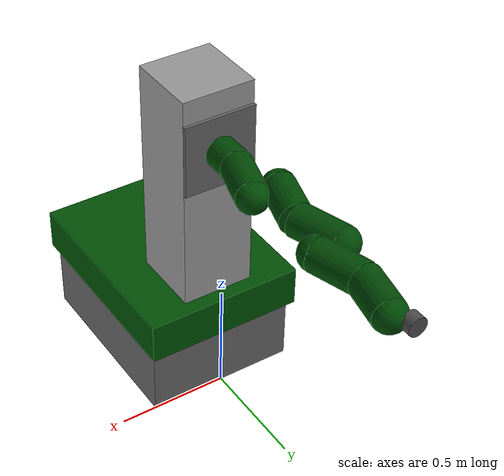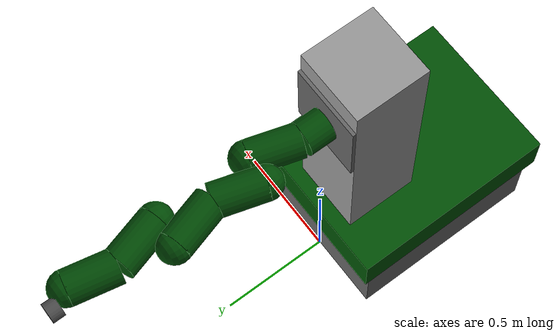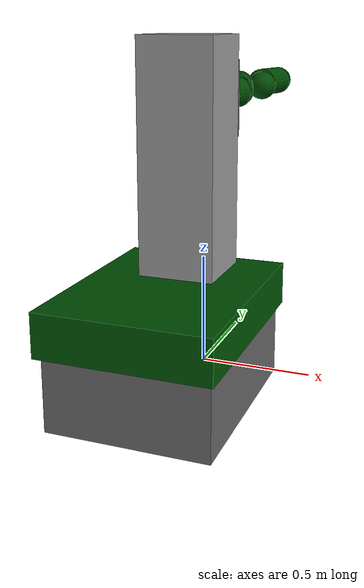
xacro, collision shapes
<?xml version="1.0"?>
<robot xmlns:xacro="http://www.ros.org/wiki/xacro" name="ics_lwr_enviroment">

    <!-- Include all models -->
    <xacro:include filename="$(find lwr_description)/model/kuka_lwr.urdf.xacro"/>

    <!-- CONSTANTS -->
    <xacro:property name="PI" value="3.14159265359" />

    <material name="Grey1">
        <color rgba="0.4 0.4 0.4 1.0"/>
    </material>

    <material name="Grey2">
        <color rgba="0.6 0.6 0.6 1.0"/>
    </material>

    <material name="DarkGreen1">
        <color rgba="0.0 0.32 0.02 1.0"/>
    </material>

    <!-- world -->
    <link name="world"/>

    <!-- platform_lower -->
    <xacro:property name="platform_lower_size_x" value="0.680" />
    <xacro:property name="platform_lower_size_y" value="0.865" />
    <xacro:property name="platform_lower_size_z" value="0.315" />
    <xacro:property name="platform_lower_origin_x" value="${platform_lower_size_x/2}" />
    <xacro:property name="platform_lower_origin_y" value="${platform_lower_size_y/2}" />
    <xacro:property name="platform_lower_origin_z" value="${platform_lower_size_z/2}" />

    <link name="platform_lower">
        <inertial>
            <mass value="10.0"/>
            <origin rpy="0 0 0" xyz="0 0 0"/>
            <inertia ixx="0.01" iyy="0.01" izz="0.01" ixy="0" iyz="0" ixz="0"/>
        </inertial>
        <visual>
            <origin xyz="${platform_lower_origin_x} ${platform_lower_origin_y} ${platform_lower_origin_z}" rpy="0 0 0"/>
            <geometry>
                <box size="${platform_lower_size_x} ${platform_lower_size_y} ${platform_lower_size_z}"/>
            </geometry>
            <material name="Grey1"> </material>
        </visual>
        <collision>
            <origin xyz="${platform_lower_origin_x} ${platform_lower_origin_y} ${platform_lower_origin_z}" rpy="0 0 0"/>
            <geometry>
                <box size="${platform_lower_size_x} ${platform_lower_size_y} ${platform_lower_size_z}"/>
            </geometry>
        </collision>
    </link>

    <!-- fix platform_lower to world -->
    <joint name="platform_lower_to_world" type="fixed">
        <origin xyz="0.340 0.000 0.000" rpy="0.000 0.000 ${PI}"/>
        <parent link="world"/>
        <child link="platform_lower"/>
    </joint>

    <!-- platform_upper -->
    <xacro:property name="platform_upper_size_x" value="0.720" />
    <xacro:property name="platform_upper_size_y" value="0.935" />
    <xacro:property name="platform_upper_size_z" value="0.185" />
    <xacro:property name="platform_upper_origin_x" value="${platform_upper_size_x/2}" />
    <xacro:property name="platform_upper_origin_y" value="${platform_upper_size_y/2}" />
    <xacro:property name="platform_upper_origin_z" value="${platform_upper_size_z/2}" />

    <link name="platform_upper">
        <inertial>
            <mass value="10.0"/>
            <origin rpy="0 0 0" xyz="0 0 0"/>
            <inertia ixx="0.01" iyy="0.01" izz="0.01" ixy="0" iyz="0" ixz="0"/>
        </inertial>
        <visual>
            <origin xyz="${platform_upper_origin_x} ${platform_upper_origin_y} ${platform_upper_origin_z}" rpy="0 0 0"/>
            <geometry>
                <box size="${platform_upper_size_x} ${platform_upper_size_y} ${platform_upper_size_z}"/>
            </geometry>
            <material name="DarkGreen1"> </material>
        </visual>
        <collision>
            <origin xyz="${platform_upper_origin_x} ${platform_upper_origin_y} ${platform_upper_origin_z}" rpy="0 0 0"/>
            <geometry>
                <box size="${platform_upper_size_x} ${platform_upper_size_y} ${platform_upper_size_z}"/>
            </geometry>
        </collision>
    </link>

    <!-- fix platform_upper to platform_lower -->
    <joint name="platform_lower_to_platform_upper" type="fixed">
        <origin xyz="-0.020 -0.035 ${platform_lower_size_z}" rpy="0.000 0.000 0.000"/>
        <parent link="platform_lower"/>
        <child link="platform_upper"/>
    </joint>

    <!-- frame -->
    <xacro:property name="frame_size_x" value="0.325" />
    <xacro:property name="frame_size_y" value="0.325" />
    <xacro:property name="frame_size_z" value="0.990" />
    <xacro:property name="frame_origin_x" value="${frame_size_x/2}" />
    <xacro:property name="frame_origin_y" value="${frame_size_y/2}" />
    <xacro:property name="frame_origin_z" value="${frame_size_z/2}" />

    <link name="frame">
        <inertial>
            <mass value="10.0"/>
            <origin rpy="0 0 0" xyz="0 0 0"/>
            <inertia ixx="0.01" iyy="0.01" izz="0.01" ixy="0" iyz="0" ixz="0"/>
        </inertial>
        <visual>
            <origin xyz="${frame_origin_x} ${frame_origin_y} ${frame_origin_z}" rpy="0 0 0"/>
            <geometry>
                <box size="${frame_size_x} ${frame_size_y} ${frame_size_z}"/>
            </geometry>
            <material name="Grey2"> </material>
        </visual>
        <collision>
            <origin xyz="${frame_origin_x} ${frame_origin_y} ${frame_origin_z}" rpy="0 0 0"/>
            <geometry>
                <box size="${frame_size_x} ${frame_size_y} ${frame_size_z}"/>
            </geometry>
        </collision>
    </link>

    <!-- attach frame to platform_upper -->
    <joint name="frame_to_platform_upper" type="fixed">
        <origin xyz="0.1975 0.065 ${platform_upper_size_z}" rpy="0.000 0.000 0.000"/>
        <parent link ="platform_upper" />
        <child link ="frame" />
    </joint>

    <!-- panel -->
    <xacro:property name="panel_size_x" value="${frame_size_x}" />
    <xacro:property name="panel_size_y" value="0.015" />
    <xacro:property name="panel_size_z" value="${frame_size_x}" />
    <xacro:property name="panel_origin_x" value="${panel_size_x/2}" />
    <xacro:property name="panel_origin_y" value="${panel_size_y/2}" />
    <xacro:property name="panel_origin_z" value="${panel_size_z/2}" />

    <link name="panel">
        <inertial>
            <mass value="10.0"/>
            <origin rpy="0 0 0" xyz="0 0 0"/>
            <inertia ixx="0.01" iyy="0.01" izz="0.01" ixy="0" iyz="0" ixz="0"/>
        </inertial>
        <visual>
            <origin xyz="${panel_origin_x} ${panel_origin_y} ${panel_origin_z}" rpy="0 0 0"/>
            <geometry>
                <box size="${panel_size_x} ${panel_size_y} ${panel_size_z}"/>
            </geometry>
            <material name="Grey1"> </material>
        </visual>
        <collision>
            <origin xyz="${panel_origin_x} ${panel_origin_y} ${panel_origin_z}" rpy="0 0 0"/>
            <geometry>
                <box size="${panel_size_x} ${panel_size_y} ${panel_size_z}"/>
            </geometry>
        </collision>
    </link>

    <!-- attach panel to frame -->
    <joint name="panel_to_frame" type="fixed">
        <origin xyz="0.000 -${panel_size_y} 0.560" rpy="0.000 0.000 0.000"/>
        <parent link ="frame" />
        <child link ="panel" />
    </joint>

    <!-- reference stage to gazebo -->
    <gazebo reference="panel">
        <static>true</static>>
    </gazebo>

    <!-- connect framework with robot -->
    <xacro:property name="robot_origin_x" value="${panel_origin_x}" />
    <xacro:property name="robot_origin_y" value="${panel_origin_y - panel_size_y/2}" />
    <xacro:property name="robot_origin_z" value="${panel_origin_z}" />
    <xacro:property name="robotOriginR" value="${PI/2}" />
    <xacro:property name="robotOriginP" value="${-PI/2}" />
    <xacro:property name="robot_origin_yaw" value="0" />

    <xacro:kuka_lwr parent="panel" name="lwr">
        <origin xyz="${robot_origin_x} ${robot_origin_y} ${robot_origin_z}" rpy="${robotOriginR} ${robotOriginP} ${robot_origin_yaw}"/>
    </xacro:kuka_lwr>

</robot>

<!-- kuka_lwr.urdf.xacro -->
<robot name="kuka_lwr" xmlns:xacro="http://www.ros.org/wiki/xacro">

	<!-- utils /-->
	<xacro:include filename="$(find lwr_description)/model/utils.xacro"/>
	<xacro:include filename="$(find lwr_description)/model/kuka_materials.xacro"
	/>

	<!-- gazebo and transmission models /-->
	<xacro:include filename="$(find lwr_description)/model/kuka_lwr.gazebo.xacro"/>
	<xacro:include filename="$(find lwr_description)/model/kuka_lwr.transmission.xacro"/>

	<!-- properties /-->
    <xacro:property name="base_mass" value="2.0"/>
        <xacro:property name="link_mass" value="2.35"/>
        <xacro:property name="wrist_mass" value="2.1"/>
        <xacro:property name="tip_mass" value="2.25"/>
        <xacro:property name="velocity_scale" value="0.1"/>
        <xacro:property name="effort_scale" value="1"/>

	<!-- URDF model /-->
	<xacro:macro name="kuka_lwr" params="parent name *origin">

            <!-- First (shoulder) element of the arm. Fixed to its parent. -->
            <joint name="${parent}_${name}_base_joint" type="fixed">
                <insert_block name="origin"/>
                <origin xyz="0 0 0" rpy="0 0 0"/>
                <parent link="${parent}"/>
                <child link="${name}_base_link"/>
            </joint>

            <link name="${name}_base_link">
                <inertial>
                    <mass value="${base_mass}"/>
                    <origin xyz="0 0 0.055"  />
                    <cylinder_inertia_def radius="0.06" length="0.11" mass="${base_mass}"/>
                </inertial>

                <visual>
                    <origin xyz="0 0 0" rpy="0 0 ${M_PI}"/>
                    <geometry>
                        <mesh filename="package://lwr_description/meshes/visual/base.STL"/>
                    </geometry>
                    <material name="Kuka/DarkGreen"/>
                </visual>

                <collision>
                    <origin xyz="0 0 0.055" rpy="0 0 ${M_PI}"/>
                    <geometry>
                        <cylinder radius="0.07" length="0.11"/>
                    </geometry>
                </collision>
            </link>

            <!-- Second segment of the arm. Joint along z-axis -->
            <joint name="${name}_a1_joint" type="revolute">
                    <origin xyz="0 0 0.11" rpy="0 0 0"/>
                    <axis xyz="0 0 1"/>
                    <limit lower="${-170 * M_PI / 180}" upper="${170 * M_PI / 180}" effort="176" velocity="${velocity_scale * 110 * M_PI / 180}" />
                    <dynamics friction="10.0" damping="1.0"/>
                    <parent link="${name}_base_link"/>
                    <child link="${name}_a1_link"/>
            </joint>

            <link name="${name}_a1_link">
                <inertial>
                    <mass value="${link_mass}"/>
                    <origin rpy="0 0 0" xyz="0 -0.06 0.130"/>
                    <cuboid_inertia_def length="0.12" width="0.06" height="0.260" mass="${link_mass}"/>
                </inertial>

                <visual>
                    <origin xyz="0 0 -0.008" rpy="0 0 ${M_PI}"/>
                    <geometry>
                        <mesh filename="package://lwr_description/meshes/visual/link_1.STL"/>
                    </geometry>
                    <material name="Kuka/DarkGreen"/>
                </visual>

                <collision>
                    <origin xyz="0 0.06 0.2" rpy="0 0 0"/>
                    <geometry>
                        <sphere radius="0.07"/>
                    </geometry>
                </collision>

                <collision>
                    <origin xyz="0 0.03 0.1" rpy="-0.291 0 0"/>
                    <geometry>
                         <cylinder radius="0.07" length="0.208"/>
                    </geometry>
                </collision>
            </link>

            <!-- Third segment of the arm. Joint along y-axis -->
            <joint name="${name}_a2_joint" type="revolute">
                    <origin xyz="0 0 0.2005" rpy="0 0 0"/>
                    <axis xyz="0 -1 0"/>
                    <limit lower="${-120 * M_PI / 180}" upper="${120 * M_PI / 180}" effort="176" velocity="${velocity_scale * 110 * M_PI / 180}" />
                    <dynamics friction="10.0" damping="1.0"/>
                    <parent link="${name}_a1_link"/>
                    <child link="${name}_a2_link"/>
            </joint>

            <link name="${name}_a2_link">
                    <inertial>
                        <mass value="${link_mass}"/>
                        <origin xyz="0 0.06 ${0.130 - 0.06}" rpy="0 0 0" />
                        <cuboid_inertia_def length="0.12" width="0.06" height="0.260" mass="${link_mass}"/>
                    </inertial>

                    <visual>
                        <origin xyz="0 0 0.0" rpy="0 0 ${M_PI}"/>
                        <geometry>
                             <mesh filename="package://lwr_description/meshes/visual/link_2.STL"/>
                        </geometry>
                        <material name="Kuka/DarkGreen"/>
                    </visual>

                    <collision>
                        <origin xyz="0 -0.06 0.0" rpy="0 0 0"/>
                        <geometry>
                            <sphere radius="0.07"/>
                        </geometry>
                    </collision>
                    <collision>
                        <origin xyz="0 -0.03 0.1" rpy="-0.291 0 0"/>
                        <geometry>
                            <cylinder radius="0.07" length="0.208"/>
                        </geometry>
                    </collision>
		</link>

            <!-- Fourth element of the arm. z-axis -->
            <joint name="${name}_e1_joint" type="revolute">
                <origin xyz="0 0 0.20" rpy="0 0 0"/>
                <axis xyz="0 0 1"/>
                <limit lower="${-170 * M_PI / 180}" upper="${170 * M_PI / 180}" effort="100" velocity="${velocity_scale * 128 * M_PI / 180}" />
                <dynamics friction="10.0" damping="1.0"/>
                <parent link="${name}_a2_link"/>
                <child link="${name}_e1_link"/>
            </joint>

            <link name="${name}_e1_link">
                    <inertial>
                        <mass value="${link_mass}"/>
                        <origin rpy="0 0 0" xyz="0 0.06 0.130"/>
                        <cuboid_inertia_def length="0.12" width="0.06" height="0.260" mass="${link_mass}"/>
                    </inertial>

                    <visual>
                        <origin xyz="0 0 -0.008" rpy="0 0 ${M_PI}"/>
                        <geometry>
                             <mesh filename="package://lwr_description/meshes/visual/link_3.STL"/>
                        </geometry>
                        <material name="Kuka/DarkGreen"/>
                    </visual>
                    <collision>
                        <origin xyz="0 -0.06 0.2" rpy="0 0 0"/>
                        <geometry>
                            <sphere radius="0.07"/>
                        </geometry>
                    </collision>
                    <collision>
                        <origin xyz="0 -0.03 0.1" rpy="0.291 0 0"/>
                        <geometry>
                            <cylinder radius="0.07" length="0.208"/>
                        </geometry>
                    </collision>
            </link>

            <!-- Fifth element of the arm. x-axis -->
            <joint name="${name}_a3_joint" type="revolute">
                <origin xyz="0 0 0.20" rpy="0 0 0"/>
                <axis xyz="0 1 0"/>
                <limit lower="${-120 * M_PI / 180}" upper="${120 * M_PI / 180}" effort="100" velocity="${velocity_scale * 128 * M_PI / 180}" />
                <dynamics friction="10.0" damping="1.0"/>
                <parent link="${name}_e1_link"/>
                <child link="${name}_a3_link"/>
            </joint>

            <link name="${name}_a3_link">
                <inertial>
                    <mass value="${link_mass}"/>
                    <origin rpy="0 0 0" xyz="0 -0.06 ${0.130 - 0.06}"/>
                    <cuboid_inertia_def length="0.12" width="0.06" height="0.2600" mass="${link_mass}"/>
                </inertial>
                <visual>
                    <origin xyz="0 0 0.0" rpy="0 0 ${M_PI}"/>
                    <geometry>
                        <mesh filename="package://lwr_description/meshes/visual/link_4.STL"/>
                    </geometry>
                    <material name="Kuka/DarkGreen"/>
                </visual>
                <collision>
                    <origin xyz="0 0.06 0.0" rpy="0 0 0"/>
                    <geometry>
                        <sphere radius="0.07"/>
                    </geometry>
                </collision>
                <collision>
                    <origin xyz="0 0.03 0.1" rpy="0.291 0 0"/>
                    <geometry>
                        <cylinder radius="0.07" length="0.208"/>
                    </geometry>
                </collision>
            </link>

            <!-- Sixth element of the arm. z-axis -->
            <joint name="${name}_a4_joint" type="revolute">
                <origin xyz="0 0 0.20" rpy="0 0 0"/>
                <axis xyz="0 0 1"/>
                <limit lower="${-170 * M_PI / 180}" upper="${170 * M_PI / 180}" effort="100" velocity="${velocity_scale * 204 * M_PI / 180}" />
                <dynamics friction="10.0" damping="1.0"/>
                <parent link="${name}_a3_link"/>
                <child link="${name}_a4_link"/>
            </joint>

            <link name="${name}_a4_link">
                <inertial>
                    <mass value="${link_mass}"/>
                    <origin rpy="0 0 0" xyz="0 0 0.124"/>
                    <cuboid_inertia_def length="0.12" width="0.06" height="0.248" mass="${link_mass}"/>
                </inertial>

                <visual>
                    <origin xyz="0 0 -0.008" rpy="0 0 ${M_PI}"/>
                    <geometry name="${name}_5_geom">
                        <mesh filename="package://lwr_description/meshes/visual/link_5.STL"/>
                    </geometry>
                    <material name="Kuka/DarkGreen"/>
                </visual>

                <collision>
                	<origin xyz="0 0.04 0.19" rpy="0 0 0"/>
                    <geometry>
                    	<sphere radius="0.07"/>
                	</geometry>
                </collision>
                <collision>
                    <origin xyz="0 0.02 0.095" rpy="-0.207 0 0"/>
                    <geometry>
                        <cylinder radius="0.07" length="0.198"/>
                    </geometry>
                </collision>
            </link>

            <!-- Seventh element of the arm. z-axis -->
            <joint name="${name}_a5_joint" type="revolute">
                <origin xyz="0 0 0.19" rpy="0 0 0"/>
                <axis xyz="0 -1 0"/>
                <limit lower="${-120 * M_PI / 180}" upper="${120 * M_PI / 180}" effort="38" velocity="${velocity_scale * 184 * M_PI / 180}" />
                <dynamics friction="10.0" damping="1.0"/>
                <parent link="${name}_a4_link"/>
                <child link="${name}_a5_link"/>
            </joint>

            <link name="${name}_a5_link">
                <inertial>
                    <mass value="${wrist_mass}"/>
                    <origin rpy="0 0 0" xyz="0 0 0.0625"/>
                    <cuboid_inertia_def length="0.125" width="0.125" height="0.125" mass="${wrist_mass}"/>
                </inertial>

                <visual>
                    <origin xyz="0 0 0" rpy="0 0 ${M_PI}"/>
                    <geometry>
                        <mesh filename="package://lwr_description/meshes/visual/link_6.STL"/>
                    </geometry>
                    <material name="Kuka/Grey"/>
                </visual>
            </link>

            <!-- Eighth element of the arm. z-axis -->
            <joint name="${name}_a6_joint" type="revolute">
                <origin xyz="0 0 0.078" rpy="0 0 0"/>
                <axis xyz="0 0 1"/>
                <limit lower="${-170 * M_PI / 180}" upper="${170 * M_PI / 180}" effort="38" velocity="${velocity_scale * 184 * M_PI / 180}" />
                <dynamics friction="10.0" damping="1.0"/>
                <parent link="${name}_a5_link"/>
                <child link="${name}_a6_link"/>
            </joint>

            <link name="${name}_a6_link">
                <inertial>
                    <mass value="${tip_mass}"/>
                    <origin xyz="0 0 0"/>
                    <cuboid_inertia_def length="0.1" width="0.1" height="0.1" mass="${tip_mass}"/>
                </inertial>

                <visual>
                    <origin xyz="0 0 0" rpy="0 0 ${M_PI}"/>
                    <geometry>
                        <mesh filename="package://lwr_description/meshes/visual/link_7.STL"/>
                    </geometry>
                    <material name="Kuka/DarkGrey"/>
                </visual>

                <collision>
                    <origin xyz="0 0 0" rpy="0 0 ${M_PI}"/>
                    <geometry>
                        <cylinder radius="0.04" length="0.05"/>
                    </geometry>
                </collision>
            </link>

            <xacro:kuka_lwr_gazebo name="${name}"/>
            <xacro:kuka_lwr_transmission name="${name}"/>

	</xacro:macro>

</robot>

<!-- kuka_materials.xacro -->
<robot xmlns:xacro="http://www.ros.org/wiki/xacro">
  <material name="Kuka/DarkGrey">
    <color rgba="0.3 0.3 0.3 1.0"/>
  </material>

  <material name="Kuka/LightGrey">
    <color rgba="0.8 0.8 0.8 1.0"/>
  </material>

  <material name="Kuka/Red">
    <color rgba="0.3 0.3 0.3 1.0"/>
  </material>

  <material name="Kuka/Black">
    <color rgba="0 0 0 1.0"/>
  </material>

  <material name="Kuka/Orange">
    <color rgba="1.0 0.487 0 1.0"/>
  </material>

  <material name="Kuka/Silver">
    <color rgba="1.0 1.0 1.0 1.0"/>
  </material>

  <material name="Kuka/Grey">
    <color rgba="0.7 0.7 0.7 1.0"/>
  </material>

  <material name="Kuka/Blue">
    <color rgba="0.0 0.0 0.8 1.0"/>
  </material>

  <material name="Kuka/DarkGreen">
    <color rgba="0.0 0.29 0.02 1.0"/>
  </material>

</robot>
